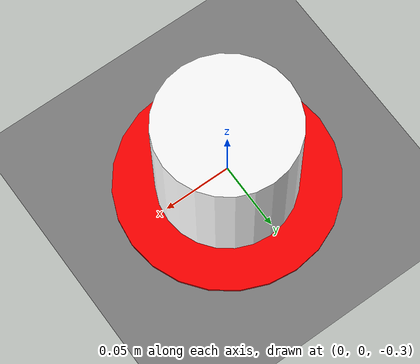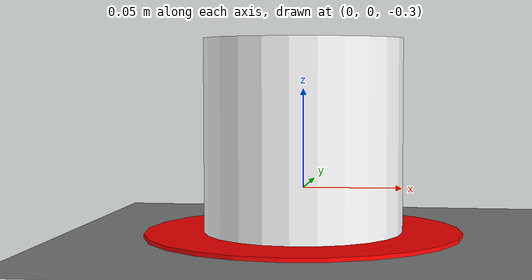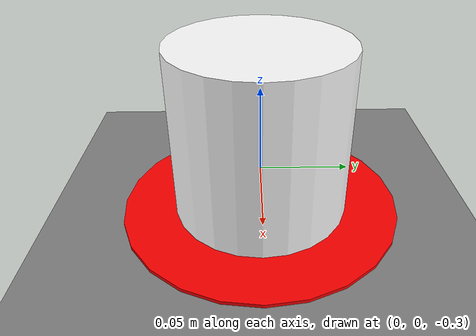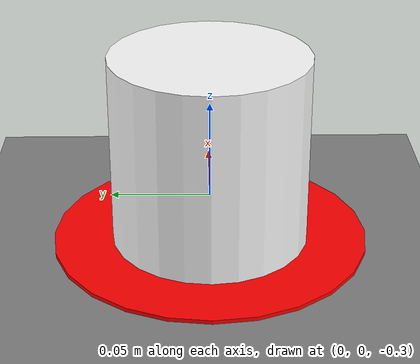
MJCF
<mujoco model="simple">
  <compiler inertiafromgeom="true" angle="degree" coordinate="local"/>
  <option timestep="0.01" gravity="0 0 0" iterations="20" integrator="Euler" />

  <default>
    <joint armature='0.04' damping="1" limited="true"/>
    <geom friction=".8 .1 .1" density="300" margin="0.002" condim="1" contype="0" conaffinity="0"/>
  </default>

  <worldbody>
    <geom name="floor" type="plane" pos="0 0 -0.325" size="4 4 0.1" contype="1" conaffinity="1"/>

    <body name="object" pos="0 0 -0.275" >
      <geom rgba="1 1 1 0" type="sphere" size="0.05 0.05 0.05" density="0.00001" conaffinity="0"/>
      <geom rgba="1 1 1 1" type="cylinder" size="0.05 0.05 0.05" density="0.00001" contype="1" conaffinity="0"/>
      <joint name="obj_slidey" type="slide" pos="0 0 0" axis="0 1 0" range="-3 3" damping="0.5"/>
      <joint name="obj_slidex" type="slide" pos="0 0 0" axis="1 0 0" range="-3 3" damping="0.5"/>
    </body>

    <body name="goal" pos="0 0 -0.3230">
      <geom rgba="1 0 0 1" type="cylinder" size="0.08 0.001 0.1" density='0.00001' contype="0" conaffinity="0"/>
      <joint name="goal_slidey" type="slide" pos="0 0 0" axis="0 1 0" range="-3 3" damping="0.5"/>
      <joint name="goal_slidex" type="slide" pos="0 0 0" axis="1 0 0" range="-3 3" damping="0.5"/>
    </body>
  </worldbody>

  <actuator>
    <motor ctrllimited="true" ctrlrange="-1 1" joint="obj_slidey"/>
    <motor ctrllimited="true" ctrlrange="-1 1" joint="obj_slidex"/>
  </actuator>

</mujoco>
